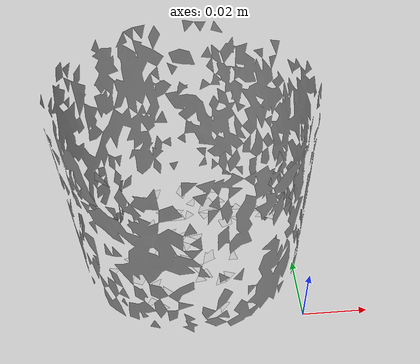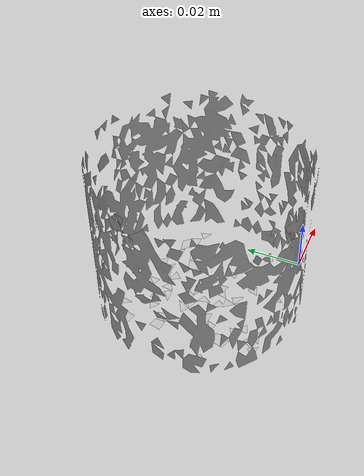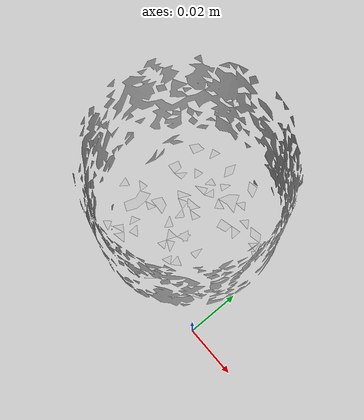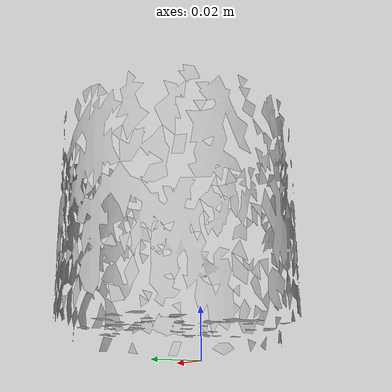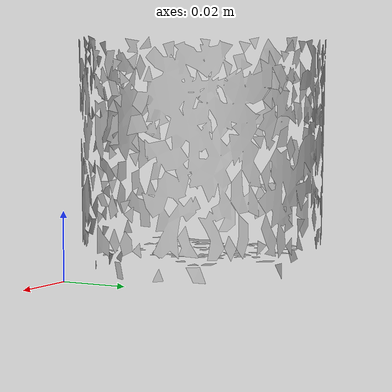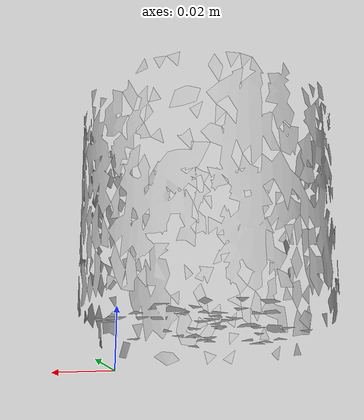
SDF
<?xml version="1.0" ?>
<sdf version="1.4">
  <model name='ycb_065-f_cups'>
    <link name='body'>
      <inertial>
        <mass>0.021</mass>
        <pose>-0.0375227821052 0.02473145643 0.0314334489481 0 0 0</pose>
        <inertia>
          <ixx>1.88566816947e-05</ixx>
          <ixy>4.86396665633e-07</ixy>
          <ixz>-8.42040081553e-07</ixz>
          <iyy>2.06357379926e-05</iyy>
          <iyz>-3.53805080698e-07</iyz>
          <izz>2.10056124637e-05</izz>
        </inertia>
      </inertial>
      <visual name='ycb_065-f_cups_visual'>
        <pose>0 0 0 0 0 0</pose>
        <geometry>
          <mesh>
            <uri>model://ycb_065-f_cups/meshes/textured.dae</uri>
          </mesh>
        </geometry>
      </visual>
      <collision name='ycb_065-f_cups_collision'>
        <pose>0 0 0 0 0 0</pose>
        <geometry>
          <mesh>
            <uri>model://ycb_065-f_cups/meshes/nontextured.stl</uri>
          </mesh>
        </geometry>
        <max_contacts>10</max_contacts>
      </collision>
    </link>
  </model>
</sdf>
